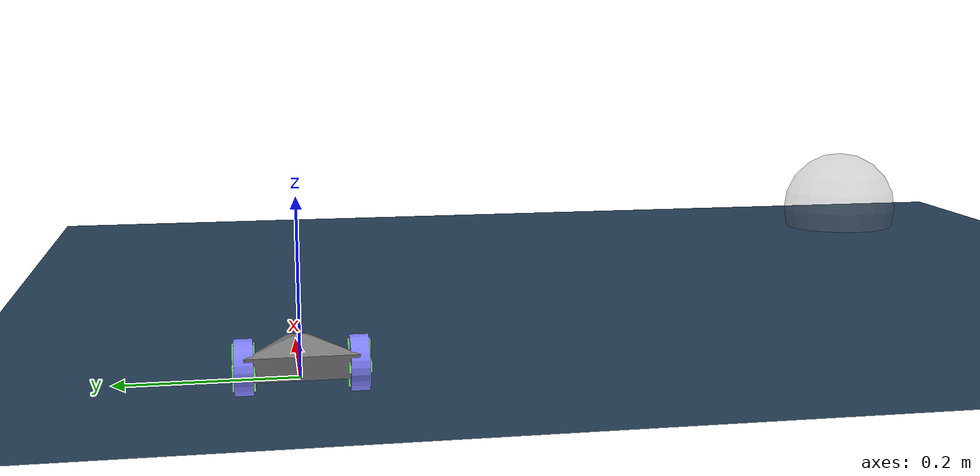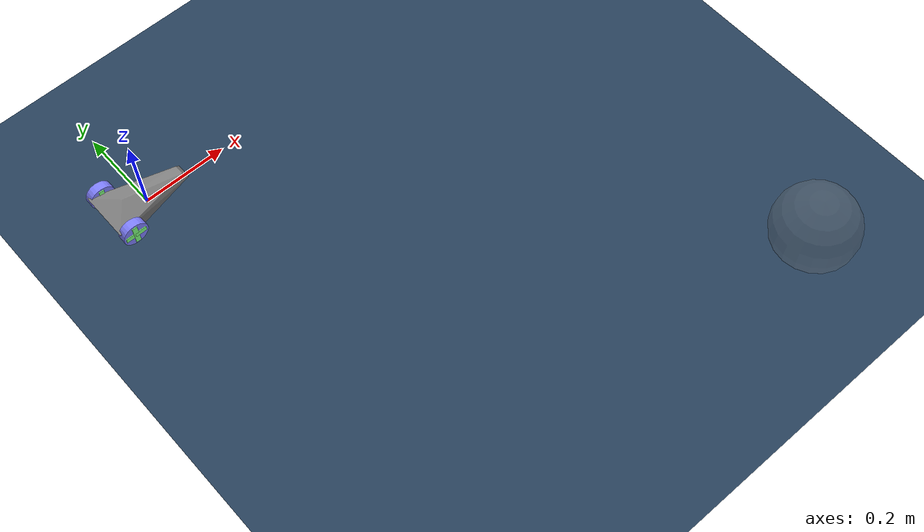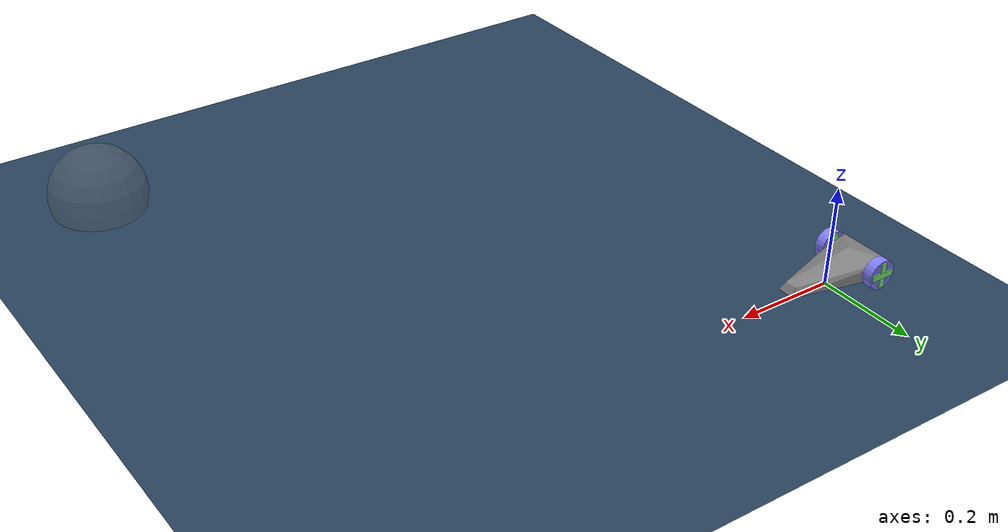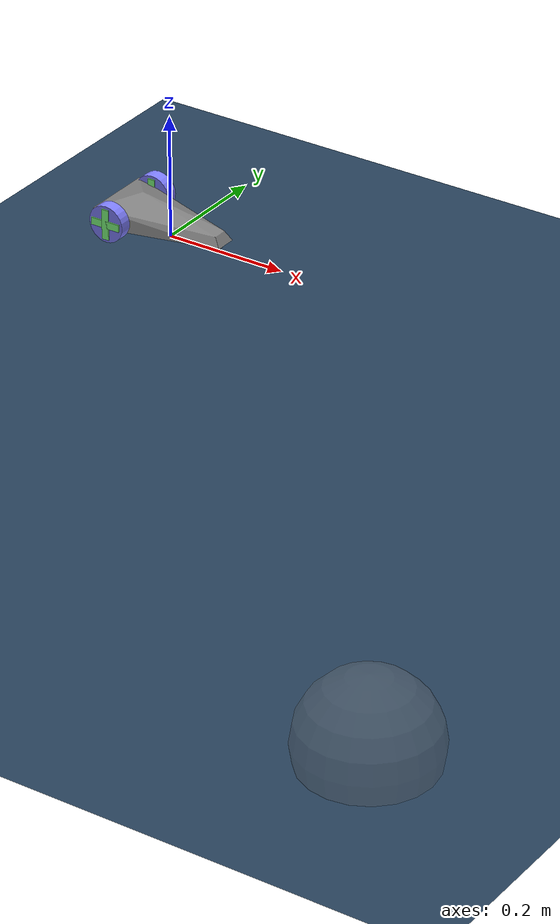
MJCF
<mujoco>
  <compiler autolimits="true" />

  <asset>
    <texture name="grid" type="2d" builtin="checker" width="512" height="512" rgb1=".1 .2 .3"
      rgb2=".2 .3 .4" />
    <material name="grid" texture="grid" texrepeat="1 1" texuniform="true" reflectance=".2" />
    <mesh name="chasis" scale=".01 .006 .0015"
      vertex=" 9   2   0
              -10  10  10
               9  -2   0
               10  3  -10
               10 -3  -10
              -8   10 -10
              -10 -10  10
              -8  -10 -10
              -5   0   20" />
  </asset>

  <default>
    <joint damping=".03" actuatorfrcrange="-0.5 0.5" />
    <default class="wheel">
      <geom type="cylinder" size=".03 .01" rgba=".5 .5 1 1" />
    </default>
    <default class="decor">
      <site type="box" rgba=".5 1 .5 1" />
    </default>
  </default>

  <worldbody>
    <light pos="0 -0.1 0.5" dir="0 0.2 -1" diffuse="0.7 0.7 0.7" specular="0.3 0.3 0.3"
      directional="true" castshadow="true" />
    <geom type="plane" size="3 3 .01" material="grid" />
    <body name="goal" pos=" 1 -1 .03">
      <geom name="gold sphere" size="0.1" rgba="0.5 0.5 0.5 0.3" group="1" contype="0"
        conaffinity="0" mass="0" />
    </body>
    <body name="car" pos="0 0 .03">
      <freejoint />
      <light name="top light" pos="0 0 2" mode="trackcom" diffuse=".4 .4 .4" />
      <geom name="chasis" type="mesh" mesh="chasis" />
      <geom name="front wheel" pos=".08 0 -.015" type="sphere" size=".015" condim="1" priority="1" />
      <light name="front light" pos=".1 0 .02" dir="2 0 -1" diffuse="1 1 1" />
      <body name="left wheel" pos="-.07 .06 0" zaxis="0 1 0">
        <joint name="left" />
        <geom class="wheel" />
        <site class="decor" size=".006 .025 .012" />
        <site class="decor" size=".025 .006 .012" />
      </body>
      <body name="right wheel" pos="-.07 -.06 0" zaxis="0 1 0">
        <joint name="right" />
        <geom class="wheel" />
        <site class="decor" size=".006 .025 .012" />
        <site class="decor" size=".025 .006 .012" />
      </body>
    </body>
  </worldbody>

  <tendon>
    <fixed name="forward">
      <joint joint="left" coef=".5" />
      <joint joint="right" coef=".5" />
    </fixed>
    <fixed name="turn">
      <joint joint="left" coef="-.5" />
      <joint joint="right" coef=".5" />
    </fixed>
  </tendon>

  <actuator>
    <motor name="forward" tendon="forward" ctrlrange="-1 1" />
    <motor name="turn" tendon="turn" ctrlrange="-1 1" />
  </actuator>

  <sensor>
    <jointactuatorfrc name="right" joint="right" />
    <jointactuatorfrc name="left" joint="left" />
  </sensor>
</mujoco>
